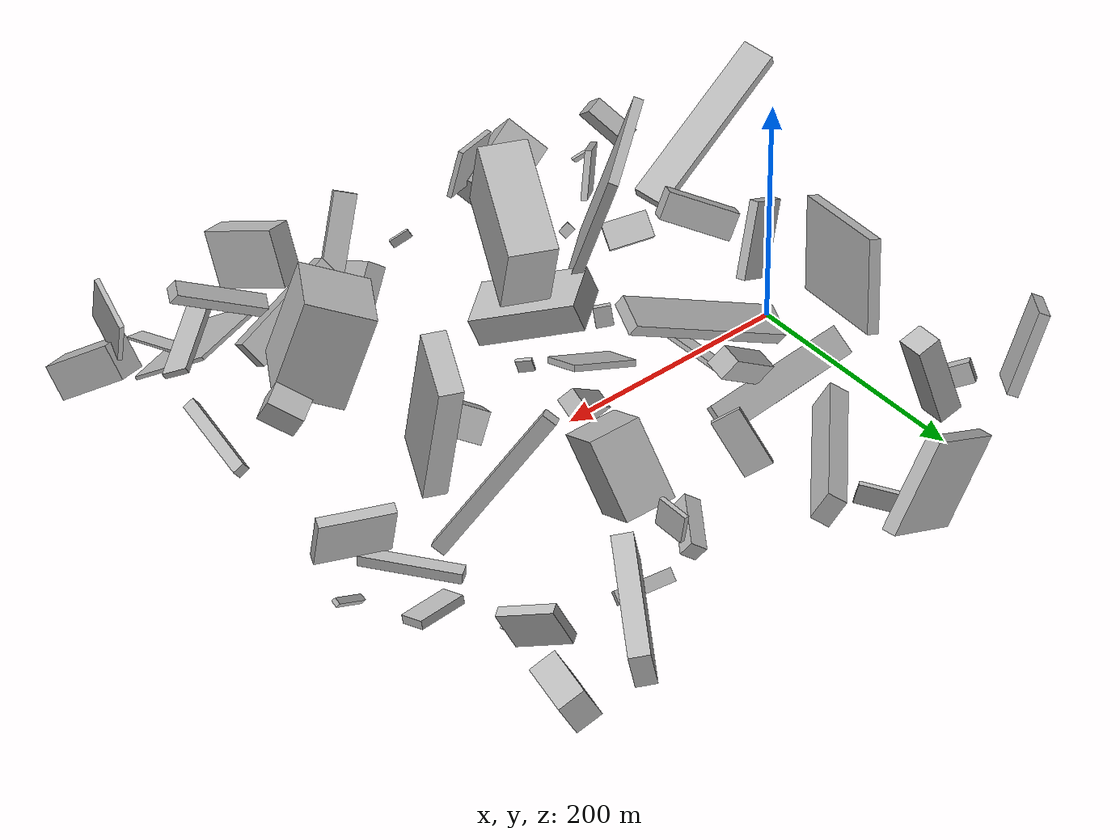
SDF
<sdf version="1.6">
 <world name="default">
  <scene>
   <sky><clouds><speed>12</speed></clouds></sky>
   <ambient>0.4 0.4 0.4 1</ambient>
   <background>0.7 0.7 0.7 1</background>
   <shadows>1</shadows>
  </scene>
  <gravity>0 0 -9.8066</gravity>
  <magnetic_field>6e-06 2.3e-05 -4.2e-05</magnetic_field>
  <physics default="0" name="default_physics" type="ode">
   <ode>
    <solver>
     <type>quick</type>
     <iters>10</iters>
     <sor>1.0</sor>
     <use_dynamic_moi_rescaling>0</use_dynamic_moi_rescaling>
    </solver>
    <constraints>
     <cfm>0</cfm>
     <erp>0.2</erp>
     <contact_max_correcting_vel>100</contact_max_correcting_vel>
     <contact_surface_layer>0.001</contact_surface_layer>
    </constraints>
   </ode>
   <max_step_size>0.004</max_step_size>
   <real_time_factor>1</real_time_factor>
   <real_time_update_rate>250</real_time_update_rate>
  </physics>
  <light name="sun" type="directional">
   <pose>0 0 10 0 0 0</pose>
   <diffuse>0.8 0.8 0.8 1</diffuse>
   <specular>0.2 0.2 0.2 1</specular>
   <attenuation>
    <range>1000</range>
    <constant>0.9</constant>
    <linear>0.01</linear>
    <quadratic>0.001</quadratic>
   </attenuation>
   <direction>-0.5 0.1 -0.9</direction>
  </light>
  <model name="building_1">
   <static>0</static>
   <pose>479.9231714549077 83.64659306919884 34.214074644127045 2.596451792498037 -0.570668335849536 0.34676398716801965</pose>
   <link name="link">
    <gravity>0</gravity>
    <pose>0 0 2.0 0 0 0</pose>
    <collision name="collision"><geometry><box><size>42 6 4</size></box></geometry></collision>
    <visual name="visual">
     <cast_shadows>0</cast_shadows>
     <geometry><box><size>42 6 4</size></box></geometry>
     <material>
      <script>
       <uri>model://HANNAS_wall/materials/scripts</uri>
       <uri>model://HANNAS_wall/materials/textures</uri>
       <name>vrc/HANNAS_wall</name>
      </script>
     </material>
    </visual>
   </link>
  </model>
  <model name="building_2">
   <static>0</static>
   <pose>115.47465802377992 -158.77510656139938 90.91803717556955 -0.4951305580236843 0.8676387538707425 -1.631718613705425</pose>
   <link name="link">
    <gravity>0</gravity>
    <pose>0 0 19.0 0 0 0</pose>
    <collision name="collision"><geometry><box><size>29 64 38</size></box></geometry></collision>
    <visual name="visual">
     <cast_shadows>0</cast_shadows>
     <geometry><box><size>29 64 38</size></box></geometry>
     <material>
      <script>
       <uri>model://HANNAS_wall/materials/scripts</uri>
       <uri>model://HANNAS_wall/materials/textures</uri>
       <name>vrc/HANNAS_wall</name>
      </script>
     </material>
    </visual>
   </link>
  </model>
  <model name="building_3">
   <static>0</static>
   <pose>253.74552628784713 107.28596423222228 57.42789506525484 -0.38075195179798277 -0.9537420806531246 -1.4816254179629549</pose>
   <link name="link">
    <gravity>0</gravity>
    <pose>0 0 31.5 0 0 0</pose>
    <collision name="collision"><geometry><box><size>66 41 63</size></box></geometry></collision>
    <visual name="visual">
     <cast_shadows>0</cast_shadows>
     <geometry><box><size>66 41 63</size></box></geometry>
     <material>
      <script>
       <uri>model://HANNAS_wall/materials/scripts</uri>
       <uri>model://HANNAS_wall/materials/textures</uri>
       <name>vrc/HANNAS_wall</name>
      </script>
     </material>
    </visual>
   </link>
  </model>
  <model name="building_4">
   <static>0</static>
   <pose>37.425560734594704 211.27071032305082 84.37666449431771 0.19560225795441594 -1.2826772623086233 -0.24785568585726422</pose>
   <link name="link">
    <gravity>0</gravity>
    <pose>0 0 10.0 0 0 0</pose>
    <collision name="collision"><geometry><box><size>75 23 20</size></box></geometry></collision>
    <visual name="visual">
     <cast_shadows>0</cast_shadows>
     <geometry><box><size>75 23 20</size></box></geometry>
     <material>
      <script>
       <uri>model://HANNAS_wall/materials/scripts</uri>
       <uri>model://HANNAS_wall/materials/textures</uri>
       <name>vrc/HANNAS_wall</name>
      </script>
     </material>
    </visual>
   </link>
  </model>
  <model name="building_5">
   <static>0</static>
   <pose>281.83402703105327 -30.031669762173948 28.117062632937888 0.9663942309625324 0.3410350073967717 2.4261503425359767</pose>
   <link name="link">
    <gravity>0</gravity>
    <pose>0 0 22.5 0 0 0</pose>
    <collision name="collision"><geometry><box><size>24 26 45</size></box></geometry></collision>
    <visual name="visual">
     <cast_shadows>0</cast_shadows>
     <geometry><box><size>24 26 45</size></box></geometry>
     <material>
      <script>
       <uri>model://HANNAS_wall/materials/scripts</uri>
       <uri>model://HANNAS_wall/materials/textures</uri>
       <name>vrc/HANNAS_wall</name>
      </script>
     </material>
    </visual>
   </link>
  </model>
  <model name="building_6">
   <static>0</static>
   <pose>335.4019160434052 227.58451688087973 52.42103739119493 2.857284134634145 0.1713860935854118 -0.6345410492573308</pose>
   <link name="link">
    <gravity>0</gravity>
    <pose>0 0 20.0 0 0 0</pose>
    <collision name="collision"><geometry><box><size>17 107 40</size></box></geometry></collision>
    <visual name="visual">
     <cast_shadows>0</cast_shadows>
     <geometry><box><size>17 107 40</size></box></geometry>
     <material>
      <script>
       <uri>model://HANNAS_wall/materials/scripts</uri>
       <uri>model://HANNAS_wall/materials/textures</uri>
       <name>vrc/HANNAS_wall</name>
      </script>
     </material>
    </visual>
   </link>
  </model>
  <model name="building_7">
   <static>0</static>
   <pose>98.97991463517853 238.96562616650337 32.291205874103476 3.0441568159471193 -0.2197396777632567 -0.8172795679928333</pose>
   <link name="link">
    <gravity>0</gravity>
    <pose>0 0 10.0 0 0 0</pose>
    <collision name="collision"><geometry><box><size>35 4 20</size></box></geometry></collision>
    <visual name="visual">
     <cast_shadows>0</cast_shadows>
     <geometry><box><size>35 4 20</size></box></geometry>
     <material>
      <script>
       <uri>model://HANNAS_wall/materials/scripts</uri>
       <uri>model://HANNAS_wall/materials/textures</uri>
       <name>vrc/HANNAS_wall</name>
      </script>
     </material>
    </visual>
   </link>
  </model>
  <model name="building_8">
   <static>0</static>
   <pose>78.30821406541689 1.182059969464337 12.538943746565328 2.7861879668056995 -0.05577648697628392 1.541059147076388</pose>
   <link name="link">
    <gravity>0</gravity>
    <pose>0 0 2.0 0 0 0</pose>
    <collision name="collision"><geometry><box><size>71 14 4</size></box></geometry></collision>
    <visual name="visual">
     <cast_shadows>0</cast_shadows>
     <geometry><box><size>71 14 4</size></box></geometry>
     <material>
      <script>
       <uri>model://HANNAS_wall/materials/scripts</uri>
       <uri>model://HANNAS_wall/materials/textures</uri>
       <name>vrc/HANNAS_wall</name>
      </script>
     </material>
    </visual>
   </link>
  </model>
  <model name="building_9">
   <static>0</static>
   <pose>21.881412928603886 -114.91098213797582 55.54560926157952 1.1166340863001911 -0.17736098356600768 -1.306029640536722</pose>
   <link name="link">
    <gravity>0</gravity>
    <pose>0 0 75.0 0 0 0</pose>
    <collision name="collision"><geometry><box><size>26 11 150</size></box></geometry></collision>
    <visual name="visual">
     <cast_shadows>0</cast_shadows>
     <geometry><box><size>26 11 150</size></box></geometry>
     <material>
      <script>
       <uri>model://HANNAS_wall/materials/scripts</uri>
       <uri>model://HANNAS_wall/materials/textures</uri>
       <name>vrc/HANNAS_wall</name>
      </script>
     </material>
    </visual>
   </link>
  </model>
  <model name="building_10">
   <static>0</static>
   <pose>455.8707635722951 -74.59148728465034 41.65470548906297 -1.5209269156138985 0.942680549799792 2.9788861414144634</pose>
   <link name="link">
    <gravity>0</gravity>
    <pose>0 0 42.0 0 0 0</pose>
    <collision name="collision"><geometry><box><size>9 10 84</size></box></geometry></collision>
    <visual name="visual">
     <cast_shadows>0</cast_shadows>
     <geometry><box><size>9 10 84</size></box></geometry>
     <material>
      <script>
       <uri>model://HANNAS_wall/materials/scripts</uri>
       <uri>model://HANNAS_wall/materials/textures</uri>
       <name>vrc/HANNAS_wall</name>
      </script>
     </material>
    </visual>
   </link>
  </model>
  <model name="building_11">
   <static>0</static>
   <pose>93.71320070589336 111.55942297932548 107.7212169675734 0.6382112701375038 -0.9808518344023297 2.2916754381583284</pose>
   <link name="link">
    <gravity>0</gravity>
    <pose>0 0 75.0 0 0 0</pose>
    <collision name="collision"><geometry><box><size>11 28 150</size></box></geometry></collision>
    <visual name="visual">
     <cast_shadows>0</cast_shadows>
     <geometry><box><size>11 28 150</size></box></geometry>
     <material>
      <script>
       <uri>model://HANNAS_wall/materials/scripts</uri>
       <uri>model://HANNAS_wall/materials/textures</uri>
       <name>vrc/HANNAS_wall</name>
      </script>
     </material>
    </visual>
   </link>
  </model>
  <model name="building_12">
   <static>0</static>
   <pose>88.45639289165683 -112.97639410566455 117.9999388635237 1.661294210928181 -0.9696281728060404 -2.4278393993465306</pose>
   <link name="link">
    <gravity>0</gravity>
    <pose>0 0 2.5 0 0 0</pose>
    <collision name="collision"><geometry><box><size>38 133 5</size></box></geometry></collision>
    <visual name="visual">
     <cast_shadows>0</cast_shadows>
     <geometry><box><size>38 133 5</size></box></geometry>
     <material>
      <script>
       <uri>model://HANNAS_wall/materials/scripts</uri>
       <uri>model://HANNAS_wall/materials/textures</uri>
       <name>vrc/HANNAS_wall</name>
      </script>
     </material>
    </visual>
   </link>
  </model>
  <model name="building_13">
   <static>0</static>
   <pose>290.84999630480695 194.6186563110734 7.132697000656165 -0.007667639250211368 -0.800098711298713 1.4500627169071898</pose>
   <link name="link">
    <gravity>0</gravity>
    <pose>0 0 5.5 0 0 0</pose>
    <collision name="collision"><geometry><box><size>4 50 11</size></box></geometry></collision>
    <visual name="visual">
     <cast_shadows>0</cast_shadows>
     <geometry><box><size>4 50 11</size></box></geometry>
     <material>
      <script>
       <uri>model://HANNAS_wall/materials/scripts</uri>
       <uri>model://HANNAS_wall/materials/textures</uri>
       <name>vrc/HANNAS_wall</name>
      </script>
     </material>
    </visual>
   </link>
  </model>
  <model name="building_14">
   <static>0</static>
   <pose>-14.44145739935021 195.37829426263056 57.10349865966064 -0.8921797416486523 -1.1044566117725185 -1.4846341575344832</pose>
   <link name="link">
    <gravity>0</gravity>
    <pose>0 0 5.0 0 0 0</pose>
    <collision name="collision"><geometry><box><size>17 28 10</size></box></geometry></collision>
    <visual name="visual">
     <cast_shadows>0</cast_shadows>
     <geometry><box><size>17 28 10</size></box></geometry>
     <material>
      <script>
       <uri>model://HANNAS_wall/materials/scripts</uri>
       <uri>model://HANNAS_wall/materials/textures</uri>
       <name>vrc/HANNAS_wall</name>
      </script>
     </material>
    </visual>
   </link>
  </model>
  <model name="building_15">
   <static>0</static>
   <pose>162.585771036841 -170.31214359713005 106.41944026881731 0.19089491704619457 -0.151305038321162 -1.2298900269159976</pose>
   <link name="link">
    <gravity>0</gravity>
    <pose>0 0 20.5 0 0 0</pose>
    <collision name="collision"><geometry><box><size>4 45 41</size></box></geometry></collision>
    <visual name="visual">
     <cast_shadows>0</cast_shadows>
     <geometry><box><size>4 45 41</size></box></geometry>
     <material>
      <script>
       <uri>model://HANNAS_wall/materials/scripts</uri>
       <uri>model://HANNAS_wall/materials/textures</uri>
       <name>vrc/HANNAS_wall</name>
      </script>
     </material>
    </visual>
   </link>
  </model>
  <model name="building_16">
   <static>0</static>
   <pose>-37.7367201809245 -256.54749977189107 35.89304943354173 2.4542788154031565 0.7039160329721342 -1.977540133138366</pose>
   <link name="link">
    <gravity>0</gravity>
    <pose>0 0 19.5 0 0 0</pose>
    <collision name="collision"><geometry><box><size>34 14 39</size></box></geometry></collision>
    <visual name="visual">
     <cast_shadows>0</cast_shadows>
     <geometry><box><size>34 14 39</size></box></geometry>
     <material>
      <script>
       <uri>model://HANNAS_wall/materials/scripts</uri>
       <uri>model://HANNAS_wall/materials/textures</uri>
       <name>vrc/HANNAS_wall</name>
      </script>
     </material>
    </visual>
   </link>
  </model>
  <model name="building_17">
   <static>0</static>
   <pose>446.6102850362832 50.38650651241946 74.0342007347878 2.800883254345524 -0.0011982438352211504 -0.4005071561995512</pose>
   <link name="link">
    <gravity>0</gravity>
    <pose>0 0 26.0 0 0 0</pose>
    <collision name="collision"><geometry><box><size>60 9 52</size></box></geometry></collision>
    <visual name="visual">
     <cast_shadows>0</cast_shadows>
     <geometry><box><size>60 9 52</size></box></geometry>
     <material>
      <script>
       <uri>model://HANNAS_wall/materials/scripts</uri>
       <uri>model://HANNAS_wall/materials/textures</uri>
       <name>vrc/HANNAS_wall</name>
      </script>
     </material>
    </visual>
   </link>
  </model>
  <model name="building_18">
   <static>0</static>
   <pose>210.36379591054464 -34.590657033037786 122.82040317736879 -0.013126896781096322 1.1969566028451026 -2.024672679877578</pose>
   <link name="link">
    <gravity>0</gravity>
    <pose>0 0 49.0 0 0 0</pose>
    <collision name="collision"><geometry><box><size>73 39 98</size></box></geometry></collision>
    <visual name="visual">
     <cast_shadows>0</cast_shadows>
     <geometry><box><size>73 39 98</size></box></geometry>
     <material>
      <script>
       <uri>model://HANNAS_wall/materials/scripts</uri>
       <uri>model://HANNAS_wall/materials/textures</uri>
       <name>vrc/HANNAS_wall</name>
      </script>
     </material>
    </visual>
   </link>
  </model>
  <model name="building_19">
   <static>0</static>
   <pose>188.91399820734307 -23.527055590229256 35.5579388744349 -2.0658286806128072 1.0654065047284418 0.8637421080606182</pose>
   <link name="link">
    <gravity>0</gravity>
    <pose>0 0 26.5 0 0 0</pose>
    <collision name="collision"><geometry><box><size>5 43 53</size></box></geometry></collision>
    <visual name="visual">
     <cast_shadows>0</cast_shadows>
     <geometry><box><size>5 43 53</size></box></geometry>
     <material>
      <script>
       <uri>model://HANNAS_wall/materials/scripts</uri>
       <uri>model://HANNAS_wall/materials/textures</uri>
       <name>vrc/HANNAS_wall</name>
      </script>
     </material>
    </visual>
   </link>
  </model>
  <model name="building_20">
   <static>0</static>
   <pose>208.78847817834452 20.197892341034123 43.05222810926824 -2.2341749160270705 -0.667218902016368 0.4317542600298636</pose>
   <link name="link">
    <gravity>0</gravity>
    <pose>0 0 8.0 0 0 0</pose>
    <collision name="collision"><geometry><box><size>60 15 16</size></box></geometry></collision>
    <visual name="visual">
     <cast_shadows>0</cast_shadows>
     <geometry><box><size>60 15 16</size></box></geometry>
     <material>
      <script>
       <uri>model://HANNAS_wall/materials/scripts</uri>
       <uri>model://HANNAS_wall/materials/textures</uri>
       <name>vrc/HANNAS_wall</name>
      </script>
     </material>
    </visual>
   </link>
  </model>
  <model name="building_21">
   <static>0</static>
   <pose>329.10293145098757 262.3396462417587 131.3205585901274 0.11889696467692529 0.05734350091373083 -3.0663718318945774</pose>
   <link name="link">
    <gravity>0</gravity>
    <pose>0 0 12.0 0 0 0</pose>
    <collision name="collision"><geometry><box><size>4 26 24</size></box></geometry></collision>
    <visual name="visual">
     <cast_shadows>0</cast_shadows>
     <geometry><box><size>4 26 24</size></box></geometry>
     <material>
      <script>
       <uri>model://HANNAS_wall/materials/scripts</uri>
       <uri>model://HANNAS_wall/materials/textures</uri>
       <name>vrc/HANNAS_wall</name>
      </script>
     </material>
    </visual>
   </link>
  </model>
  <model name="building_22">
   <static>0</static>
   <pose>452.53831871543474 -253.35292861671928 96.26791147106744 1.96684752922813 -0.10616291394341695 2.8949843954514236</pose>
   <link name="link">
    <gravity>0</gravity>
    <pose>0 0 22.5 0 0 0</pose>
    <collision name="collision"><geometry><box><size>4 56 45</size></box></geometry></collision>
    <visual name="visual">
     <cast_shadows>0</cast_shadows>
     <geometry><box><size>4 56 45</size></box></geometry>
     <material>
      <script>
       <uri>model://HANNAS_wall/materials/scripts</uri>
       <uri>model://HANNAS_wall/materials/textures</uri>
       <name>vrc/HANNAS_wall</name>
      </script>
     </material>
    </visual>
   </link>
  </model>
  <model name="building_23">
   <static>0</static>
   <pose>443.02148058480657 141.28562003638507 100.50238985564062 -0.14342401286638362 0.5521991898154902 2.093839673138745</pose>
   <link name="link">
    <gravity>0</gravity>
    <pose>0 0 75.0 0 0 0</pose>
    <collision name="collision"><geometry><box><size>12 9 150</size></box></geometry></collision>
    <visual name="visual">
     <cast_shadows>0</cast_shadows>
     <geometry><box><size>12 9 150</size></box></geometry>
     <material>
      <script>
       <uri>model://HANNAS_wall/materials/scripts</uri>
       <uri>model://HANNAS_wall/materials/textures</uri>
       <name>vrc/HANNAS_wall</name>
      </script>
     </material>
    </visual>
   </link>
  </model>
  <model name="building_24">
   <static>0</static>
   <pose>259.0986590485536 -187.31737119343165 42.99783868299802 0.7560141021450686 0.7241096632751881 0.5191288128225005</pose>
   <link name="link">
    <gravity>0</gravity>
    <pose>0 0 8.0 0 0 0</pose>
    <collision name="collision"><geometry><box><size>39 80 16</size></box></geometry></collision>
    <visual name="visual">
     <cast_shadows>0</cast_shadows>
     <geometry><box><size>39 80 16</size></box></geometry>
     <material>
      <script>
       <uri>model://HANNAS_wall/materials/scripts</uri>
       <uri>model://HANNAS_wall/materials/textures</uri>
       <name>vrc/HANNAS_wall</name>
      </script>
     </material>
    </visual>
   </link>
  </model>
  <model name="building_25">
   <static>0</static>
   <pose>-5.00874652089103 78.38921821035098 20.723284732963286 -1.4526811518944356 -0.6664930926424916 -1.4735862966937254</pose>
   <link name="link">
    <gravity>0</gravity>
    <pose>0 0 75.0 0 0 0</pose>
    <collision name="collision"><geometry><box><size>25 5 150</size></box></geometry></collision>
    <visual name="visual">
     <cast_shadows>0</cast_shadows>
     <geometry><box><size>25 5 150</size></box></geometry>
     <material>
      <script>
       <uri>model://HANNAS_wall/materials/scripts</uri>
       <uri>model://HANNAS_wall/materials/textures</uri>
       <name>vrc/HANNAS_wall</name>
      </script>
     </material>
    </visual>
   </link>
  </model>
  <model name="building_26">
   <static>0</static>
   <pose>85.68141443376838 165.46648477890537 64.97021181830974 -1.4375424016205822 -0.5322133719206363 -0.8107998567360576</pose>
   <link name="link">
    <gravity>0</gravity>
    <pose>0 0 75.0 0 0 0</pose>
    <collision name="collision"><geometry><box><size>16 25 150</size></box></geometry></collision>
    <visual name="visual">
     <cast_shadows>0</cast_shadows>
     <geometry><box><size>16 25 150</size></box></geometry>
     <material>
      <script>
       <uri>model://HANNAS_wall/materials/scripts</uri>
       <uri>model://HANNAS_wall/materials/textures</uri>
       <name>vrc/HANNAS_wall</name>
      </script>
     </material>
    </visual>
   </link>
  </model>
  <model name="building_27">
   <static>0</static>
   <pose>177.76214322027548 -62.375748452022634 50.400228070403415 -0.36193921233316734 -0.05585105769010014 -2.498847892033393</pose>
   <link name="link">
    <gravity>0</gravity>
    <pose>0 0 12.5 0 0 0</pose>
    <collision name="collision"><geometry><box><size>46 88 25</size></box></geometry></collision>
    <visual name="visual">
     <cast_shadows>0</cast_shadows>
     <geometry><box><size>46 88 25</size></box></geometry>
     <material>
      <script>
       <uri>model://HANNAS_wall/materials/scripts</uri>
       <uri>model://HANNAS_wall/materials/textures</uri>
       <name>vrc/HANNAS_wall</name>
      </script>
     </material>
    </visual>
   </link>
  </model>
  <model name="building_28">
   <static>0</static>
   <pose>303.1029374051284 -243.9955547425661 38.97753261093774 0.4355692478277524 -0.14017343269367868 0.19690759218742857</pose>
   <link name="link">
    <gravity>0</gravity>
    <pose>0 0 23.5 0 0 0</pose>
    <collision name="collision"><geometry><box><size>21 69 47</size></box></geometry></collision>
    <visual name="visual">
     <cast_shadows>0</cast_shadows>
     <geometry><box><size>21 69 47</size></box></geometry>
     <material>
      <script>
       <uri>model://HANNAS_wall/materials/scripts</uri>
       <uri>model://HANNAS_wall/materials/textures</uri>
       <name>vrc/HANNAS_wall</name>
      </script>
     </material>
    </visual>
   </link>
  </model>
  <model name="building_29">
   <static>0</static>
   <pose>394.0906675396697 168.0258844574095 14.153035937972906 -2.302930736156902 0.21845893246966322 -1.2586134315579915</pose>
   <link name="link">
    <gravity>0</gravity>
    <pose>0 0 2.0 0 0 0</pose>
    <collision name="collision"><geometry><box><size>11 23 4</size></box></geometry></collision>
    <visual name="visual">
     <cast_shadows>0</cast_shadows>
     <geometry><box><size>11 23 4</size></box></geometry>
     <material>
      <script>
       <uri>model://HANNAS_wall/materials/scripts</uri>
       <uri>model://HANNAS_wall/materials/textures</uri>
       <name>vrc/HANNAS_wall</name>
      </script>
     </material>
    </visual>
   </link>
  </model>
  <model name="building_30">
   <static>0</static>
   <pose>388.5219081852131 59.94253958103587 96.37937685951523 0.37985661264129084 -0.009317275945274598 2.717564324700236</pose>
   <link name="link">
    <gravity>0</gravity>
    <pose>0 0 75.0 0 0 0</pose>
    <collision name="collision"><geometry><box><size>19 52 150</size></box></geometry></collision>
    <visual name="visual">
     <cast_shadows>0</cast_shadows>
     <geometry><box><size>19 52 150</size></box></geometry>
     <material>
      <script>
       <uri>model://HANNAS_wall/materials/scripts</uri>
       <uri>model://HANNAS_wall/materials/textures</uri>
       <name>vrc/HANNAS_wall</name>
      </script>
     </material>
    </visual>
   </link>
  </model>
  <model name="building_31">
   <static>0</static>
   <pose>291.8989844637962 -159.86933929275614 75.92011654182994 1.2934428278091812 -0.5785022992380204 1.0735147085911125</pose>
   <link name="link">
    <gravity>0</gravity>
    <pose>0 0 9.0 0 0 0</pose>
    <collision name="collision"><geometry><box><size>9 150 18</size></box></geometry></collision>
    <visual name="visual">
     <cast_shadows>0</cast_shadows>
     <geometry><box><size>9 150 18</size></box></geometry>
     <material>
      <script>
       <uri>model://HANNAS_wall/materials/scripts</uri>
       <uri>model://HANNAS_wall/materials/textures</uri>
       <name>vrc/HANNAS_wall</name>
      </script>
     </material>
    </visual>
   </link>
  </model>
  <model name="building_32">
   <static>0</static>
   <pose>50.83402026047067 269.37664674651967 76.35900576903222 2.5403999069780614 0.16699172843874444 1.8726119594714006</pose>
   <link name="link">
    <gravity>0</gravity>
    <pose>0 0 38.5 0 0 0</pose>
    <collision name="collision"><geometry><box><size>11 124 77</size></box></geometry></collision>
    <visual name="visual">
     <cast_shadows>0</cast_shadows>
     <geometry><box><size>11 124 77</size></box></geometry>
     <material>
      <script>
       <uri>model://HANNAS_wall/materials/scripts</uri>
       <uri>model://HANNAS_wall/materials/textures</uri>
       <name>vrc/HANNAS_wall</name>
      </script>
     </material>
    </visual>
   </link>
  </model>
  <model name="building_33">
   <static>0</static>
   <pose>-47.162737060394875 -57.43179014419637 55.68770015240567 2.677250690123061 -0.12869438393297802 1.8240427581446608</pose>
   <link name="link">
    <gravity>0</gravity>
    <pose>0 0 31.5 0 0 0</pose>
    <collision name="collision"><geometry><box><size>8 32 63</size></box></geometry></collision>
    <visual name="visual">
     <cast_shadows>0</cast_shadows>
     <geometry><box><size>8 32 63</size></box></geometry>
     <material>
      <script>
       <uri>model://HANNAS_wall/materials/scripts</uri>
       <uri>model://HANNAS_wall/materials/textures</uri>
       <name>vrc/HANNAS_wall</name>
      </script>
     </material>
    </visual>
   </link>
  </model>
  <model name="building_34">
   <static>0</static>
   <pose>-25.976078808902187 61.00142783656037 74.07782896066773 1.4311413658607481 -0.38622157943370444 1.1980578307661893</pose>
   <link name="link">
    <gravity>0</gravity>
    <pose>0 0 4.5 0 0 0</pose>
    <collision name="collision"><geometry><box><size>141 74 9</size></box></geometry></collision>
    <visual name="visual">
     <cast_shadows>0</cast_shadows>
     <geometry><box><size>141 74 9</size></box></geometry>
     <material>
      <script>
       <uri>model://HANNAS_wall/materials/scripts</uri>
       <uri>model://HANNAS_wall/materials/textures</uri>
       <name>vrc/HANNAS_wall</name>
      </script>
     </material>
    </visual>
   </link>
  </model>
  <model name="building_35">
   <static>0</static>
   <pose>-45.06903819633858 221.26105245403687 43.517512774774964 0.3683651649781506 0.34739887509250195 -2.2072349417343986</pose>
   <link name="link">
    <gravity>0</gravity>
    <pose>0 0 34.0 0 0 0</pose>
    <collision name="collision"><geometry><box><size>46 9 68</size></box></geometry></collision>
    <visual name="visual">
     <cast_shadows>0</cast_shadows>
     <geometry><box><size>46 9 68</size></box></geometry>
     <material>
      <script>
       <uri>model://HANNAS_wall/materials/scripts</uri>
       <uri>model://HANNAS_wall/materials/textures</uri>
       <name>vrc/HANNAS_wall</name>
      </script>
     </material>
    </visual>
   </link>
  </model>
  <model name="building_36">
   <static>0</static>
   <pose>471.3924204423656 -247.32660171583376 35.906725288794746 1.7179486875962466 -0.8914048708954645 -1.4581265470706062</pose>
   <link name="link">
    <gravity>0</gravity>
    <pose>0 0 11.5 0 0 0</pose>
    <collision name="collision"><geometry><box><size>29 73 23</size></box></geometry></collision>
    <visual name="visual">
     <cast_shadows>0</cast_shadows>
     <geometry><box><size>29 73 23</size></box></geometry>
     <material>
      <script>
       <uri>model://HANNAS_wall/materials/scripts</uri>
       <uri>model://HANNAS_wall/materials/textures</uri>
       <name>vrc/HANNAS_wall</name>
      </script>
     </material>
    </visual>
   </link>
  </model>
  <model name="building_37">
   <static>0</static>
   <pose>109.7158628273139 99.94066543459297 61.95747479845633 1.1240638622785384 -0.6629808271857084 0.2937564397777678</pose>
   <link name="link">
    <gravity>0</gravity>
    <pose>0 0 8.5 0 0 0</pose>
    <collision name="collision"><geometry><box><size>66 19 17</size></box></geometry></collision>
    <visual name="visual">
     <cast_shadows>0</cast_shadows>
     <geometry><box><size>66 19 17</size></box></geometry>
     <material>
      <script>
       <uri>model://HANNAS_wall/materials/scripts</uri>
       <uri>model://HANNAS_wall/materials/textures</uri>
       <name>vrc/HANNAS_wall</name>
      </script>
     </material>
    </visual>
   </link>
  </model>
  <model name="building_38">
   <static>0</static>
   <pose>69.35710126981849 -104.7814445248179 118.05786635352626 1.8216768922701183 -1.2685200856410885 1.9980120690929315</pose>
   <link name="link">
    <gravity>0</gravity>
    <pose>0 0 50.0 0 0 0</pose>
    <collision name="collision"><geometry><box><size>150 8 100</size></box></geometry></collision>
    <visual name="visual">
     <cast_shadows>0</cast_shadows>
     <geometry><box><size>150 8 100</size></box></geometry>
     <material>
      <script>
       <uri>model://HANNAS_wall/materials/scripts</uri>
       <uri>model://HANNAS_wall/materials/textures</uri>
       <name>vrc/HANNAS_wall</name>
      </script>
     </material>
    </visual>
   </link>
  </model>
  <model name="building_39">
   <static>0</static>
   <pose>376.2807347383961 -165.31428218077698 54.24699855947525 0.9301087586268043 -0.7279402082337737 -1.0732893874107445</pose>
   <link name="link">
    <gravity>0</gravity>
    <pose>0 0 45.0 0 0 0</pose>
    <collision name="collision"><geometry><box><size>24 24 90</size></box></geometry></collision>
    <visual name="visual">
     <cast_shadows>0</cast_shadows>
     <geometry><box><size>24 24 90</size></box></geometry>
     <material>
      <script>
       <uri>model://HANNAS_wall/materials/scripts</uri>
       <uri>model://HANNAS_wall/materials/textures</uri>
       <name>vrc/HANNAS_wall</name>
      </script>
     </material>
    </visual>
   </link>
  </model>
  <model name="building_40">
   <static>0</static>
   <pose>8.805766830615905 -67.5128844968607 76.90204861794503 -2.7390359168404923 -0.40696115464523497 -0.6561394805217782</pose>
   <link name="link">
    <gravity>0</gravity>
    <pose>0 0 11.5 0 0 0</pose>
    <collision name="collision"><geometry><box><size>59 17 23</size></box></geometry></collision>
    <visual name="visual">
     <cast_shadows>0</cast_shadows>
     <geometry><box><size>59 17 23</size></box></geometry>
     <material>
      <script>
       <uri>model://HANNAS_wall/materials/scripts</uri>
       <uri>model://HANNAS_wall/materials/textures</uri>
       <name>vrc/HANNAS_wall</name>
      </script>
     </material>
    </visual>
   </link>
  </model>
  <model name="building_41">
   <static>0</static>
   <pose>382.96593481550565 -64.50575843933407 118.06046620895583 1.703738661156481 -0.33933519106749715 -0.6363809016797554</pose>
   <link name="link">
    <gravity>0</gravity>
    <pose>0 0 30.5 0 0 0</pose>
    <collision name="collision"><geometry><box><size>57 80 61</size></box></geometry></collision>
    <visual name="visual">
     <cast_shadows>0</cast_shadows>
     <geometry><box><size>57 80 61</size></box></geometry>
     <material>
      <script>
       <uri>model://HANNAS_wall/materials/scripts</uri>
       <uri>model://HANNAS_wall/materials/textures</uri>
       <name>vrc/HANNAS_wall</name>
      </script>
     </material>
    </visual>
   </link>
  </model>
  <model name="building_42">
   <static>0</static>
   <pose>453.0956330493875 -155.63778572019157 82.78354991477194 1.370297667979781 -1.0817348666668134 -0.7313882211110291</pose>
   <link name="link">
    <gravity>0</gravity>
    <pose>0 0 40.0 0 0 0</pose>
    <collision name="collision"><geometry><box><size>5 21 80</size></box></geometry></collision>
    <visual name="visual">
     <cast_shadows>0</cast_shadows>
     <geometry><box><size>5 21 80</size></box></geometry>
     <material>
      <script>
       <uri>model://HANNAS_wall/materials/scripts</uri>
       <uri>model://HANNAS_wall/materials/textures</uri>
       <name>vrc/HANNAS_wall</name>
      </script>
     </material>
    </visual>
   </link>
  </model>
  <model name="building_43">
   <static>0</static>
   <pose>405.1100952820809 -231.01753737547085 33.52465891859685 -0.9295753005328823 0.004999599568544945 0.2878003298286687</pose>
   <link name="link">
    <gravity>0</gravity>
    <pose>0 0 40.0 0 0 0</pose>
    <collision name="collision"><geometry><box><size>80 3 80</size></box></geometry></collision>
    <visual name="visual">
     <cast_shadows>0</cast_shadows>
     <geometry><box><size>80 3 80</size></box></geometry>
     <material>
      <script>
       <uri>model://HANNAS_wall/materials/scripts</uri>
       <uri>model://HANNAS_wall/materials/textures</uri>
       <name>vrc/HANNAS_wall</name>
      </script>
     </material>
    </visual>
   </link>
  </model>
  <model name="building_44">
   <static>0</static>
   <pose>216.65946694026778 213.40536319394147 124.59916432736395 1.1064138076561927 0.959905272488295 1.963754940347259</pose>
   <link name="link">
    <gravity>0</gravity>
    <pose>0 0 2.0 0 0 0</pose>
    <collision name="collision"><geometry><box><size>49 24 4</size></box></geometry></collision>
    <visual name="visual">
     <cast_shadows>0</cast_shadows>
     <geometry><box><size>49 24 4</size></box></geometry>
     <material>
      <script>
       <uri>model://HANNAS_wall/materials/scripts</uri>
       <uri>model://HANNAS_wall/materials/textures</uri>
       <name>vrc/HANNAS_wall</name>
      </script>
     </material>
    </visual>
   </link>
  </model>
  <model name="building_45">
   <static>0</static>
   <pose>109.07843700705311 -34.10585422854958 104.56736022930623 0.9753141051044757 0.15377137063435528 -0.40877429452793607</pose>
   <link name="link">
    <gravity>0</gravity>
    <pose>0 0 11.0 0 0 0</pose>
    <collision name="collision"><geometry><box><size>36 3 22</size></box></geometry></collision>
    <visual name="visual">
     <cast_shadows>0</cast_shadows>
     <geometry><box><size>36 3 22</size></box></geometry>
     <material>
      <script>
       <uri>model://HANNAS_wall/materials/scripts</uri>
       <uri>model://HANNAS_wall/materials/textures</uri>
       <name>vrc/HANNAS_wall</name>
      </script>
     </material>
    </visual>
   </link>
  </model>
  <model name="building_46">
   <static>0</static>
   <pose>87.12316001854622 -141.27007023210533 46.101169633529864 2.3617921200495067 0.5072320264510981 -2.1919656995983554</pose>
   <link name="link">
    <gravity>0</gravity>
    <pose>0 0 4.0 0 0 0</pose>
    <collision name="collision"><geometry><box><size>2 10 8</size></box></geometry></collision>
    <visual name="visual">
     <cast_shadows>0</cast_shadows>
     <geometry><box><size>2 10 8</size></box></geometry>
     <material>
      <script>
       <uri>model://HANNAS_wall/materials/scripts</uri>
       <uri>model://HANNAS_wall/materials/textures</uri>
       <name>vrc/HANNAS_wall</name>
      </script>
     </material>
    </visual>
   </link>
  </model>
  <model name="building_47">
   <static>0</static>
   <pose>416.16411112125786 -213.72732901352663 60.39306191547013 -1.3742073094349023 -1.1866987485063483 -1.8042459446865566</pose>
   <link name="link">
    <gravity>0</gravity>
    <pose>0 0 7.0 0 0 0</pose>
    <collision name="collision"><geometry><box><size>2 71 14</size></box></geometry></collision>
    <visual name="visual">
     <cast_shadows>0</cast_shadows>
     <geometry><box><size>2 71 14</size></box></geometry>
     <material>
      <script>
       <uri>model://HANNAS_wall/materials/scripts</uri>
       <uri>model://HANNAS_wall/materials/textures</uri>
       <name>vrc/HANNAS_wall</name>
      </script>
     </material>
    </visual>
   </link>
  </model>
  <model name="building_48">
   <static>0</static>
   <pose>170.40968503452808 -237.85874660852616 18.529669267854324 1.6551987522088196 -1.0709534297369325 -0.506317018756696</pose>
   <link name="link">
    <gravity>0</gravity>
    <pose>0 0 1.0 0 0 0</pose>
    <collision name="collision"><geometry><box><size>8 17 2</size></box></geometry></collision>
    <visual name="visual">
     <cast_shadows>0</cast_shadows>
     <geometry><box><size>8 17 2</size></box></geometry>
     <material>
      <script>
       <uri>model://HANNAS_wall/materials/scripts</uri>
       <uri>model://HANNAS_wall/materials/textures</uri>
       <name>vrc/HANNAS_wall</name>
      </script>
     </material>
    </visual>
   </link>
  </model>
  <model name="building_49">
   <static>0</static>
   <pose>114.99889011175135 -50.20917761267051 29.797330378316836 1.713684537155728 -0.23864265943343868 0.9464782137567801</pose>
   <link name="link">
    <gravity>0</gravity>
    <pose>0 0 7.0 0 0 0</pose>
    <collision name="collision"><geometry><box><size>5 17 14</size></box></geometry></collision>
    <visual name="visual">
     <cast_shadows>0</cast_shadows>
     <geometry><box><size>5 17 14</size></box></geometry>
     <material>
      <script>
       <uri>model://HANNAS_wall/materials/scripts</uri>
       <uri>model://HANNAS_wall/materials/textures</uri>
       <name>vrc/HANNAS_wall</name>
      </script>
     </material>
    </visual>
   </link>
  </model>
  <model name="building_50">
   <static>0</static>
   <pose>73.17440972646278 -206.2084521448739 39.15217765522461 0.2621249038208717 -1.1251880458900085 2.556410499656531</pose>
   <link name="link">
    <gravity>0</gravity>
    <pose>0 0 1.0 0 0 0</pose>
    <collision name="collision"><geometry><box><size>9 30 2</size></box></geometry></collision>
    <visual name="visual">
     <cast_shadows>0</cast_shadows>
     <geometry><box><size>9 30 2</size></box></geometry>
     <material>
      <script>
       <uri>model://HANNAS_wall/materials/scripts</uri>
       <uri>model://HANNAS_wall/materials/textures</uri>
       <name>vrc/HANNAS_wall</name>
      </script>
     </material>
    </visual>
   </link>
  </model>
  <model name="building_51">
   <static>0</static>
   <pose>397.59708757992246 54.60855015640361 6.436298208492649 1.523408869623417 0.033510905164079924 2.212735151272781</pose>
   <link name="link">
    <gravity>0</gravity>
    <pose>0 0 6.0 0 0 0</pose>
    <collision name="collision"><geometry><box><size>80 9 12</size></box></geometry></collision>
    <visual name="visual">
     <cast_shadows>0</cast_shadows>
     <geometry><box><size>80 9 12</size></box></geometry>
     <material>
      <script>
       <uri>model://HANNAS_wall/materials/scripts</uri>
       <uri>model://HANNAS_wall/materials/textures</uri>
       <name>vrc/HANNAS_wall</name>
      </script>
     </material>
    </visual>
   </link>
  </model>
  <model name="building_52">
   <static>0</static>
   <pose>413.88479922939683 -150.25565354338207 130.1981692041948 1.1303443900522971 -0.4629177808411746 -0.2861642118142285</pose>
   <link name="link">
    <gravity>0</gravity>
    <pose>0 0 6.5 0 0 0</pose>
    <collision name="collision"><geometry><box><size>80 12 13</size></box></geometry></collision>
    <visual name="visual">
     <cast_shadows>0</cast_shadows>
     <geometry><box><size>80 12 13</size></box></geometry>
     <material>
      <script>
       <uri>model://HANNAS_wall/materials/scripts</uri>
       <uri>model://HANNAS_wall/materials/textures</uri>
       <name>vrc/HANNAS_wall</name>
      </script>
     </material>
    </visual>
   </link>
  </model>
  <model name="building_53">
   <static>0</static>
   <pose>442.2746056618999 267.1506238984279 37.47496657444466 -0.3276995743351487 -1.0615223229043813 0.12016102501947346</pose>
   <link name="link">
    <gravity>0</gravity>
    <pose>0 0 11.5 0 0 0</pose>
    <collision name="collision"><geometry><box><size>40 42 23</size></box></geometry></collision>
    <visual name="visual">
     <cast_shadows>0</cast_shadows>
     <geometry><box><size>40 42 23</size></box></geometry>
     <material>
      <script>
       <uri>model://HANNAS_wall/materials/scripts</uri>
       <uri>model://HANNAS_wall/materials/textures</uri>
       <name>vrc/HANNAS_wall</name>
      </script>
     </material>
    </visual>
   </link>
  </model>
  <model name="building_54">
   <static>0</static>
   <pose>-14.530284880712989 -237.43463216154066 7.818819828405394 -0.5423556969580206 0.5875398319572319 -0.5839195152517862</pose>
   <link name="link">
    <gravity>0</gravity>
    <pose>0 0 4.0 0 0 0</pose>
    <collision name="collision"><geometry><box><size>13 2 8</size></box></geometry></collision>
    <visual name="visual">
     <cast_shadows>0</cast_shadows>
     <geometry><box><size>13 2 8</size></box></geometry>
     <material>
      <script>
       <uri>model://HANNAS_wall/materials/scripts</uri>
       <uri>model://HANNAS_wall/materials/textures</uri>
       <name>vrc/HANNAS_wall</name>
      </script>
     </material>
    </visual>
   </link>
  </model>
  <model name="building_55">
   <static>0</static>
   <pose>446.20572947510817 -26.472723355664712 135.77654599424196 2.0991769818779398 -1.0551731749333055 1.6477870971312891</pose>
   <link name="link">
    <gravity>0</gravity>
    <pose>0 0 10.0 0 0 0</pose>
    <collision name="collision"><geometry><box><size>25 30 20</size></box></geometry></collision>
    <visual name="visual">
     <cast_shadows>0</cast_shadows>
     <geometry><box><size>25 30 20</size></box></geometry>
     <material>
      <script>
       <uri>model://HANNAS_wall/materials/scripts</uri>
       <uri>model://HANNAS_wall/materials/textures</uri>
       <name>vrc/HANNAS_wall</name>
      </script>
     </material>
    </visual>
   </link>
  </model>
  <model name="building_56">
   <static>0</static>
   <pose>191.46505096455041 -60.32372123563428 8.223142726527225 0.21272798235872659 0.2165284706869844 0.8243659140400463</pose>
   <link name="link">
    <gravity>0</gravity>
    <pose>0 0 6.5 0 0 0</pose>
    <collision name="collision"><geometry><box><size>3 13 13</size></box></geometry></collision>
    <visual name="visual">
     <cast_shadows>0</cast_shadows>
     <geometry><box><size>3 13 13</size></box></geometry>
     <material>
      <script>
       <uri>model://HANNAS_wall/materials/scripts</uri>
       <uri>model://HANNAS_wall/materials/textures</uri>
       <name>vrc/HANNAS_wall</name>
      </script>
     </material>
    </visual>
   </link>
  </model>
  <model name="building_57">
   <static>0</static>
   <pose>438.6777833479064 126.95544917787981 33.94483115134885 -3.1050993099019286 0.2842840727276214 -1.4669078769441026</pose>
   <link name="link">
    <gravity>0</gravity>
    <pose>0 0 3.5 0 0 0</pose>
    <collision name="collision"><geometry><box><size>21 43 7</size></box></geometry></collision>
    <visual name="visual">
     <cast_shadows>0</cast_shadows>
     <geometry><box><size>21 43 7</size></box></geometry>
     <material>
      <script>
       <uri>model://HANNAS_wall/materials/scripts</uri>
       <uri>model://HANNAS_wall/materials/textures</uri>
       <name>vrc/HANNAS_wall</name>
      </script>
     </material>
    </visual>
   </link>
  </model>
  <model name="building_58">
   <static>0</static>
   <pose>276.0392214391284 233.18425505181347 85.18823779185246 -0.2974100309285095 0.9513005731582411 -0.8530156849163506</pose>
   <link name="link">
    <gravity>0</gravity>
    <pose>0 0 7.0 0 0 0</pose>
    <collision name="collision"><geometry><box><size>14 47 14</size></box></geometry></collision>
    <visual name="visual">
     <cast_shadows>0</cast_shadows>
     <geometry><box><size>14 47 14</size></box></geometry>
     <material>
      <script>
       <uri>model://HANNAS_wall/materials/scripts</uri>
       <uri>model://HANNAS_wall/materials/textures</uri>
       <name>vrc/HANNAS_wall</name>
      </script>
     </material>
    </visual>
   </link>
  </model>
  <model name="building_59">
   <static>0</static>
   <pose>406.5375478195779 203.9619472552004 42.87712959927967 0.983846020803455 -1.1293389972316754 -0.4327836447446432</pose>
   <link name="link">
    <gravity>0</gravity>
    <pose>0 0 4.5 0 0 0</pose>
    <collision name="collision"><geometry><box><size>36 48 9</size></box></geometry></collision>
    <visual name="visual">
     <cast_shadows>0</cast_shadows>
     <geometry><box><size>36 48 9</size></box></geometry>
     <material>
      <script>
       <uri>model://HANNAS_wall/materials/scripts</uri>
       <uri>model://HANNAS_wall/materials/textures</uri>
       <name>vrc/HANNAS_wall</name>
      </script>
     </material>
    </visual>
   </link>
  </model>
 </world>
</sdf>
